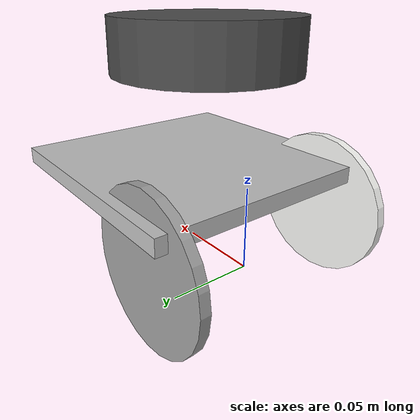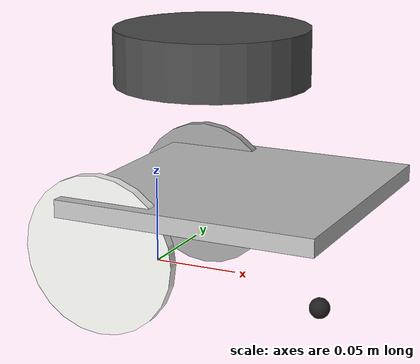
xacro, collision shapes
<?xml version="1.0" encoding="utf-8"?>
<robot name="icar"
    xmlns:xacro="http://ros.org/wiki/xacro">
    <xacro:include filename="$(find icar_description)/urdf/common_properties.xacro"/>
    <xacro:include filename="$(find icar_description)/urdf/icar.gazebo.xacro"/>

    <link name="base_footprint"/>

    <joint name="base_joint" type="fixed">
        <parent link="base_footprint"/>
        <child link="base_link"/>
        <origin xyz="0.053227 0.0 0.000" rpy="0 0 0"/>
    </joint>

    <link name="base_link">
        <inertial>
            <origin xyz="-0.012175 0 0.014958" rpy="0 0 0" />
            <mass value="0.2" />
            <inertia ixx="0.00028384" ixy="-4.2864E-15" ixz="-3.2265E-13" iyy="0.00035198" iyz="1.4426E-09" izz="0.00060387" />
        </inertial>

        <visual>
            <origin xyz="0 0 0" rpy="0 0 0" />
            <geometry>
                <mesh filename="package://icar_description/meshes/base_link.STL" />
            </geometry>
            <material name="">
                <color rgba="0.75294 0.75294 0.75294 1" />
            </material>
        </visual>

        <collision>
            <origin xyz="0 0 0.05" rpy="0 0 0" />
            <geometry>
                <box size="0.150 0.150 0.010"/>
            </geometry>
        </collision>
    </link>

    <joint name="baseToLeftWheel_joint" type="continuous">
        <origin xyz="-0.053227 0.065 0.024" rpy="-1.5708 0 0" />
        <parent link="base_link" />
        <child link="leftWheel_link" />
        <axis xyz="0 0 1" />
    </joint>

    <link name="leftWheel_link">
        <inertial>
            <origin xyz="-0.00014991 -1.6484E-05 0.0027771" rpy="0 0 0" />
            <mass value="0.01" />
            <inertia ixx="1.1321E-05" ixy="4.6749E-08" ixz="-5.5666E-14" iyy="1.1391E-05" iyz="-1.7219E-14" izz="2.2583E-05" />
        </inertial>

        <visual>
            <origin xyz="0 0 0" rpy="0 0 0" />
            <geometry>
                <mesh filename="package://icar_description/meshes/leftWheel_link.STL" />
            </geometry>
            <material name="">
                <color rgba="0.62745 0.62745 0.62745 1" />
            </material>
        </visual>

        <collision>
            <origin xyz="0 0 0" rpy="0 0 0" />
            <geometry>
                <cylinder length="0.006" radius="0.045"/>
            </geometry>
        </collision>
    </link>

    <joint name="baseToRightWheel_joint" type="continuous">
        <origin xyz="-0.053227 -0.065 0.024" rpy="-1.5708 0 3.1415926" />
        <parent link="base_link" />
        <child link="rightWheel_link" />
        <axis xyz="0 0 -1" />
    </joint>

    <link name="rightWheel_link">
        <inertial>
            <origin xyz="-0.00014991 -1.6484E-05 0.0032771" rpy="0 0 0" />
            <mass value="0.04" />
            <inertia ixx="1.1321E-05" ixy="4.6749E-08" ixz="-5.5666E-14" iyy="1.1391E-05" iyz="-1.7219E-14" izz="2.2583E-05" />
        </inertial>
        <visual>
            <origin xyz="0 0 0" rpy="0 0 0" />
            <geometry>
                <mesh filename="package://icar_description/meshes/rightWheel_link.STL" />
            </geometry>
            <material name="">
                <color rgba="0.96471 0.96471 0.95294 1" />
            </material>
        </visual>
        <collision>
            <origin xyz="0 0 0" rpy="0 0 0" />
            <geometry>
                <cylinder length="0.006" radius="0.045"/>
            </geometry>
        </collision>
    </link>

    <joint name="baseToCaster_joint" type="fixed">
        <origin xyz="0.049373 0 -0.0126" rpy="0 0.0 0" />
        <parent link="base_link" />
        <child link="caster_link" />
        <axis xyz="0 0 0" />
    </joint>

    <!-- Caster radius and mass -->
    <xacro:property name="caster_radius" value="0.006" />
    <xacro:property name="caster_mass" value="0.005" />

    <link name="caster_link">
        <visual>
            <origin xyz="0 0 0 " rpy="0 0 0" />
            <geometry>
                <sphere radius="${caster_radius}" />
            </geometry>
            <material name="Black" />
        </visual>
        <collision>
            <geometry>
                <sphere radius="${caster_radius}" />
            </geometry>
            <origin xyz="0 0 0 " rpy="0 0 0" />
        </collision>
        <sphere_inertial_matrix m="${caster_mass}" r="${caster_radius}" />
    </link>

    <joint name="baseToScan_joint" type="fixed">
        <parent link="base_link"/>
        <child link="base_scan"/>
        <origin xyz="-0.032 0 0.132" rpy="0 0 0"/>
    </joint>

    <link name="base_scan">
        <visual>
            <origin xyz="0 0 0.0" rpy="0 0 0"/>
            <geometry>
                <mesh filename="package://icar_description/meshes/lds.stl" scale="0.001 0.001 0.001"/>
            </geometry>
            <material name="dark"/>
        </visual>

        <collision>
            <origin xyz="0.015 0 -0.0065" rpy="0 0 0"/>
            <geometry>
                <cylinder length="0.0315" radius="0.055"/>
            </geometry>
        </collision>

        <inertial>
            <mass value="0.114" />
            <origin xyz="0 0 0" />
            <inertia ixx="0.001" ixy="0.0" ixz="0.0" iyy="0.001" iyz="0.0" izz="0.001" />
        </inertial>
    </link>

    <joint name="imu_joint" type="fixed">
        <parent link="base_link"/>
        <child link="imu_link"/>
        <origin xyz="0 0 0.030" rpy="0 0 0"/>
    </joint>

    <link name="imu_link"/>

</robot>

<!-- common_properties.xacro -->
<robot name="xacro_properties" xmlns:xacro="http://ros.org/wiki/xacro">

  <!-- Init colour -->
  <material name="black">
      <color rgba="0.0 0.0 0.0 1.0"/>
  </material>

  <material name="dark">
    <color rgba="0.3 0.3 0.3 1.0"/>
  </material>
  <material name="light_black">
    <color rgba="0.4 0.4 0.4 1.0"/>
  </material>

  <material name="blue">
    <color rgba="0.0 0.0 0.8 1.0"/>
  </material>

  <material name="green">
    <color rgba="0.0 0.8 0.0 1.0"/>
  </material>

  <material name="grey">
    <color rgba="0.5 0.5 0.5 1.0"/>
</material>

  <material name="orange">
    <color rgba="${255/255} ${108/255} ${10/255} 1.0"/>
  </material>

  <material name="brown">
    <color rgba="${222/255} ${207/255} ${195/255} 1.0"/>
  </material>

  <material name="red">
    <color rgba="0.8 0.0 0.0 1.0"/>
  </material>

  <material name="white">
    <color rgba="1.0 1.0 1.0 1.0"/>
  </material>

  <!-- ******************** Macro for inertia matrix ******************** -->
  <xacro:macro name="sphere_inertial_matrix" params="m r">
      <inertial>
          <mass value="${m}" />
          <inertia ixx="${2*m*r*r/5}" ixy="0" ixz="0"
              iyy="${2*m*r*r/5}" iyz="0"
              izz="${2*m*r*r/5}" />
      </inertial>
  </xacro:macro>

  <xacro:macro name="cylinder_inertial_matrix" params="m r h">
      <inertial>
          <mass value="${m}" />
          <inertia ixx="${m*(3*r*r+h*h)/12}" ixy = "0" ixz = "0"
              iyy="${m*(3*r*r+h*h)/12}" iyz = "0"
              izz="${m*r*r/2}" />
      </inertial>
  </xacro:macro>

  <xacro:macro name="box_inertial_matrix" params="m w h d">
      <inertial>
          <mass value="${m}" />
          <inertia ixx="${m*(h*h+d*d)/12}" ixy = "0" ixz = "0"
              iyy="${m*(w*w+d*d)/12}" iyz = "0"
              izz="${m*(w*w+h*h)/12}" />
      </inertial>
  </xacro:macro>

</robot>
